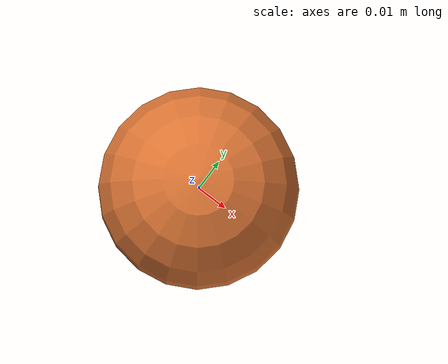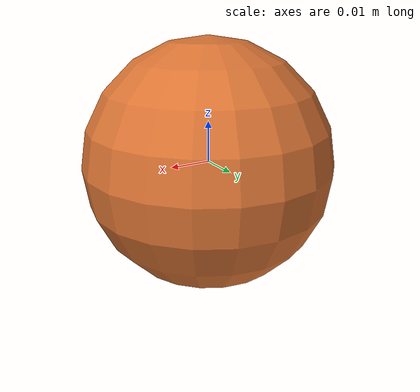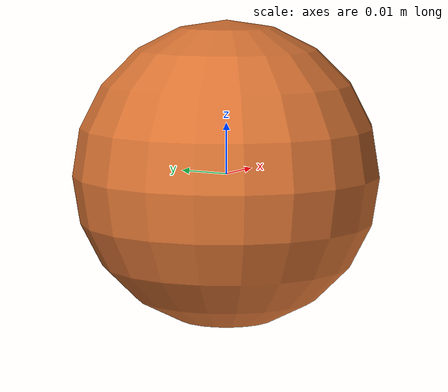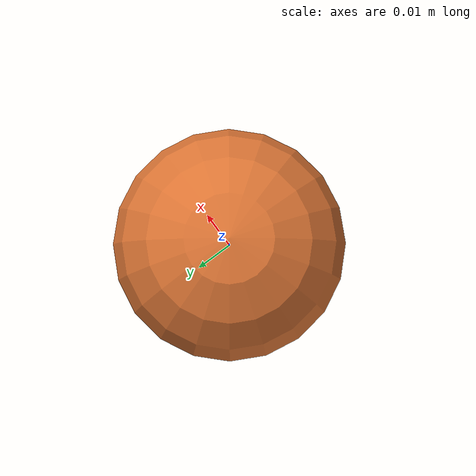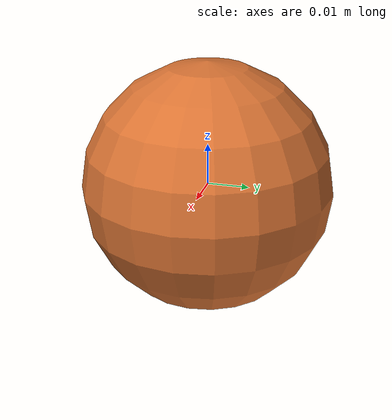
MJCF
<mujoco model="sphere">
  <worldbody>
    <body name="grasp_object" pos="0 0 0" quat="1 0 0 0">
      <freejoint name="grasp_object_freejoint"/>
      <geom
        name="grasp_object_geom"
        type="sphere"
        size="0.03"
        density="400"
        friction="0.25 0.02 0.002"
        rgba="0.85 0.45 0.2 1"/>
      <site name="grasp_anchor" pos="0 0 0" size="0.004" rgba="1 0.2 0.2 1"/>
    </body>
  </worldbody>
</mujoco>
